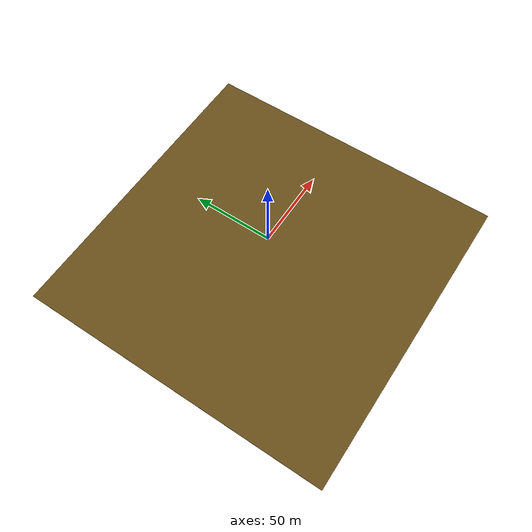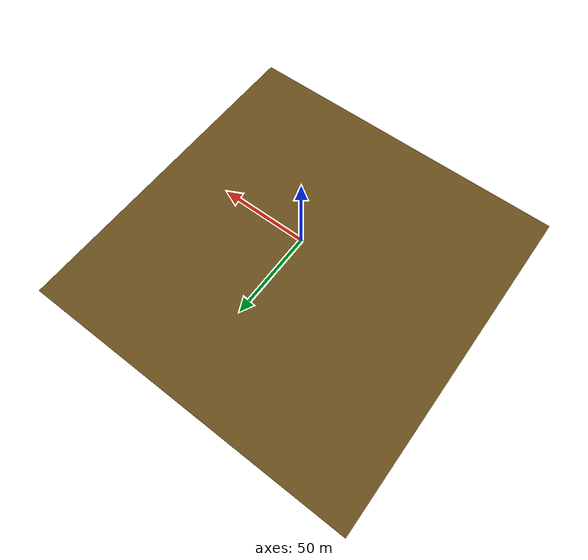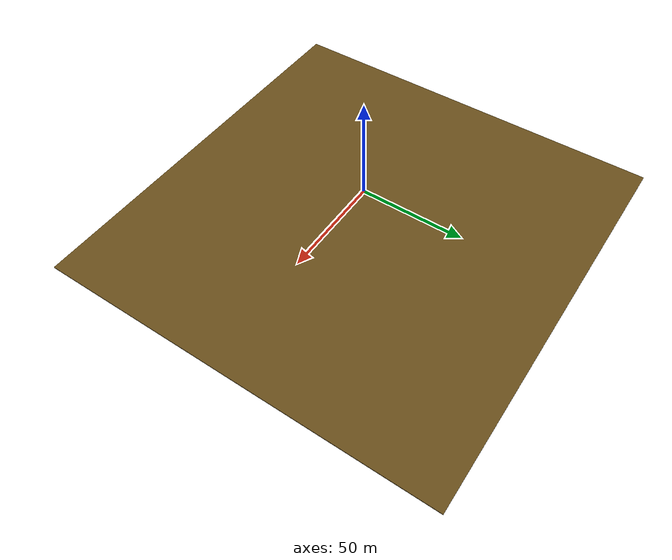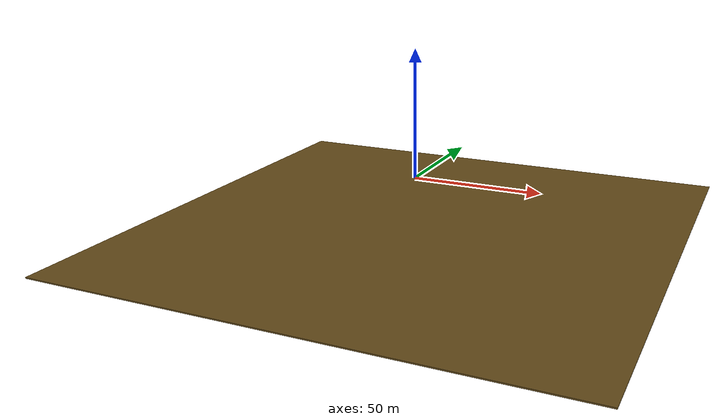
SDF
<?xml version="1.0"?>
<sdf version="1.6">
  <world name="ocean">

    <!-- Lighting -->
    <light name="sun" type="directional">
      <cast_shadows>true</cast_shadows>
      <pose>0 0 10 0 0 0</pose>
      <diffuse>0.8 0.8 0.8 1</diffuse>
      <specular>0.2 0.2 0.2 1</specular>
      <attenuation>
        <range>1000</range>
        <constant>0.9</constant>
        <linear>0.01</linear>
        <quadratic>0.001</quadratic>
      </attenuation>
      <direction>-0.5 0.1 -0.9</direction>
    </light>

    <!-- Ocean floor -->
    <model name="ocean_floor">
      <static>true</static>
      <link name="floor_link">
        <collision name="floor_collision">
          <pose>0 0 -20 0 0 0</pose>
          <geometry>
            <box><size>200 200 0.5</size></box>
          </geometry>
        </collision>
        <visual name="floor_visual">
          <pose>0 0 -20 0 0 0</pose>
          <geometry>
            <box><size>200 200 0.5</size></box>
          </geometry>
          <material>
            <ambient>0.4 0.3 0.1 1</ambient>
            <diffuse>0.4 0.3 0.1 1</diffuse>
          </material>
        </visual>
      </link>
    </model>

    <!-- Physics -->
    <gravity>0 0 -9.81</gravity>
    <physics name="default" type="ode">
      <ode>
        <solver>
          <type>quick</type>
          <iters>50</iters>
        </solver>
        <constraints>
          <cfm>0.0</cfm>
          <erp>0.2</erp>
        </constraints>
      </ode>
      <max_step_size>0.001</max_step_size>
      <real_time_factor>1</real_time_factor>
    </physics>

    <!-- Gazebo ROS plugins -->
    <plugin name="gazebo_ros_state" filename="libgazebo_ros_state.so">
      <ros>
        <namespace>/gazebo</namespace>
      </ros>
      <update_rate>10.0</update_rate>
    </plugin>

  </world>
</sdf>
